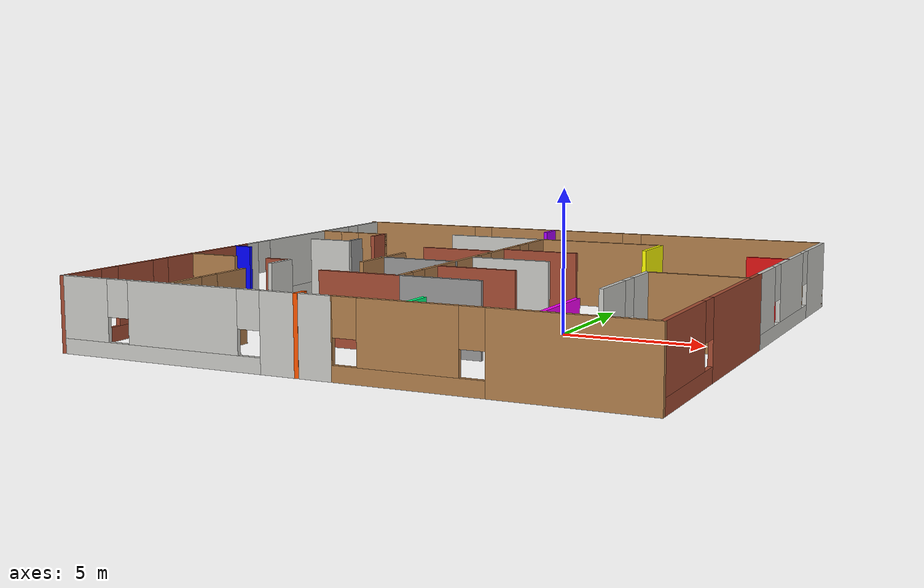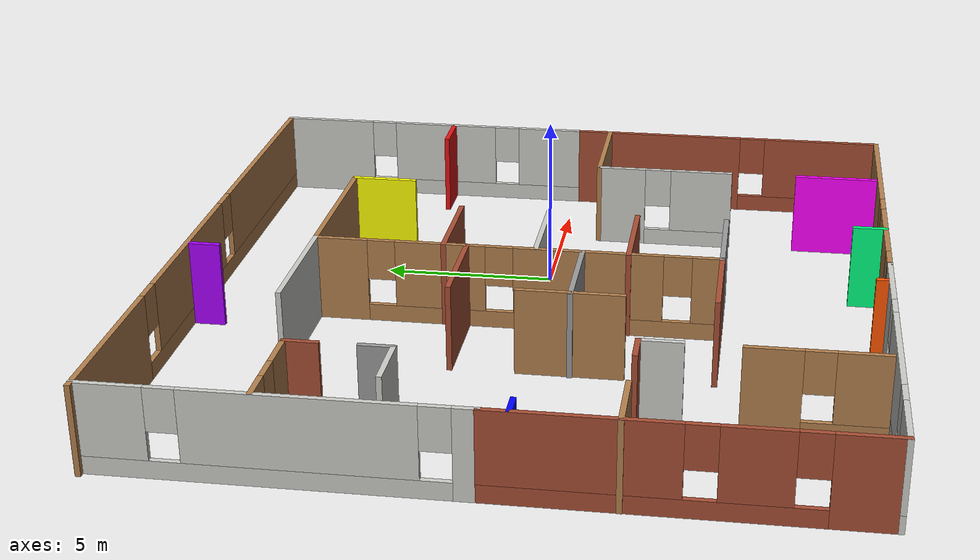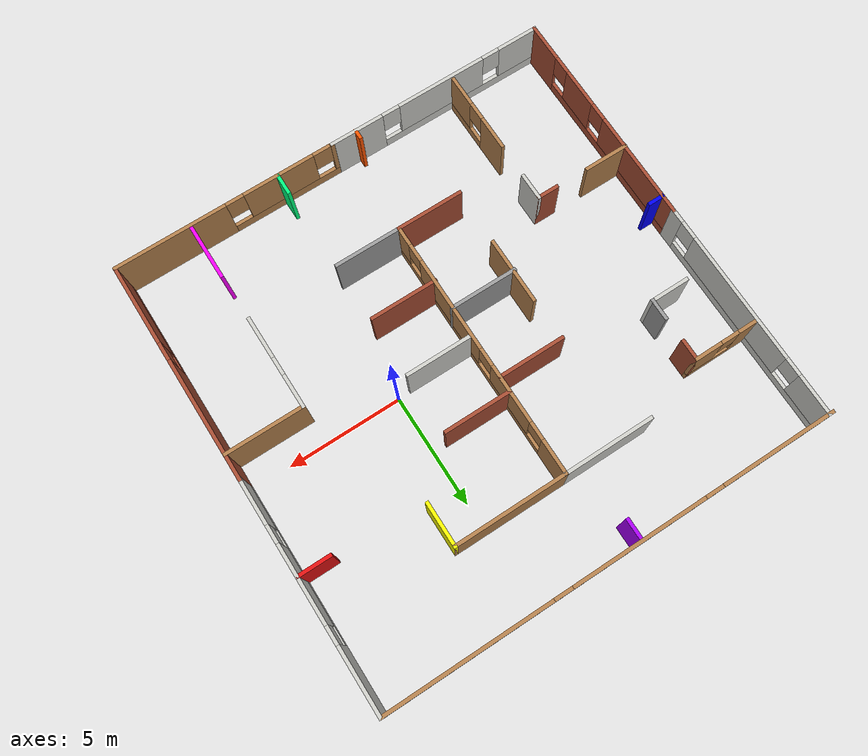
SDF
<?xml version='1.0'?>
<sdf version='1.6'>
  <model name='Mapland'>
    <pose frame=''>-3.22545 -0.022811 0 0 -0 0</pose>
    <link name='Wall_1'>
      <pose frame=''>0 9.85314 0 0 -0 0</pose>
      <visual name='Wall_1_Visual_0'>
        <pose frame=''>-7.42338 0 1.25 0 -0 0</pose>
        <geometry>
          <box>
            <size>5.15324 0.15 2.5</size>
          </box>
        </geometry>
        <material>
          <script>
            <uri>file://media/materials/scripts/gazebo.material</uri>
            <name>Gazebo/Wood</name>
          </script>
          <ambient>1 1 1 1</ambient>
        </material>
        <meta>
          <layer>0</layer>
        </meta>
      </visual>
      <collision name='Wall_1_Collision_0'>
        <geometry>
          <box>
            <size>5.15324 0.15 2.5</size>
          </box>
        </geometry>
        <pose frame=''>-7.42338 0 1.25 0 -0 0</pose>
      </collision>
      <visual name='Wall_1_Visual_1'>
        <pose frame=''>2.57662 0 0.25 0 -0 0</pose>
        <geometry>
          <box>
            <size>14.8468 0.15 0.5</size>
          </box>
        </geometry>
        <material>
          <script>
            <uri>file://media/materials/scripts/gazebo.material</uri>
            <name>Gazebo/Wood</name>
          </script>
          <ambient>1 1 1 1</ambient>
        </material>
        <meta>
          <layer>0</layer>
        </meta>
      </visual>
      <collision name='Wall_1_Collision_1'>
        <geometry>
          <box>
            <size>14.8468 0.15 0.5</size>
          </box>
        </geometry>
        <pose frame=''>2.57662 0 0.25 0 -0 0</pose>
      </collision>
      <visual name='Wall_1_Visual_2'>
        <pose frame=''>-1.08867 0 1.5 0 -0 0</pose>
        <geometry>
          <box>
            <size>5.91618 0.15 2</size>
          </box>
        </geometry>
        <material>
          <script>
            <uri>file://media/materials/scripts/gazebo.material</uri>
            <name>Gazebo/Wood</name>
          </script>
          <ambient>1 1 1 1</ambient>
        </material>
        <meta>
          <layer>0</layer>
        </meta>
      </visual>
      <collision name='Wall_1_Collision_2'>
        <geometry>
          <box>
            <size>5.91618 0.15 2</size>
          </box>
        </geometry>
        <pose frame=''>-1.08867 0 1.5 0 -0 0</pose>
      </collision>
      <visual name='Wall_1_Visual_3'>
        <pose frame=''>6.33471 0 1.5 0 -0 0</pose>
        <geometry>
          <box>
            <size>7.33058 0.15 2</size>
          </box>
        </geometry>
        <material>
          <script>
            <uri>file://media/materials/scripts/gazebo.material</uri>
            <name>Gazebo/Wood</name>
          </script>
          <ambient>1 1 1 1</ambient>
        </material>
        <meta>
          <layer>0</layer>
        </meta>
      </visual>
      <collision name='Wall_1_Collision_3'>
        <geometry>
          <box>
            <size>7.33058 0.15 2</size>
          </box>
        </geometry>
        <pose frame=''>6.33471 0 1.5 0 -0 0</pose>
      </collision>
      <visual name='Wall_1_Visual_4'>
        <pose frame=''>-4.44676 0 1.9 0 -0 0</pose>
        <geometry>
          <box>
            <size>0.8 0.15 1.2</size>
          </box>
        </geometry>
        <material>
          <script>
            <uri>file://media/materials/scripts/gazebo.material</uri>
            <name>Gazebo/Wood</name>
          </script>
          <ambient>1 1 1 1</ambient>
        </material>
        <meta>
          <layer>0</layer>
        </meta>
      </visual>
      <collision name='Wall_1_Collision_4'>
        <geometry>
          <box>
            <size>0.8 0.15 1.2</size>
          </box>
        </geometry>
        <pose frame=''>-4.44676 0 1.9 0 -0 0</pose>
      </collision>
      <visual name='Wall_1_Visual_5'>
        <pose frame=''>2.26942 0 1.9 0 -0 0</pose>
        <geometry>
          <box>
            <size>0.8 0.15 1.2</size>
          </box>
        </geometry>
        <material>
          <script>
            <uri>file://media/materials/scripts/gazebo.material</uri>
            <name>Gazebo/Wood</name>
          </script>
          <ambient>1 1 1 1</ambient>
        </material>
        <meta>
          <layer>0</layer>
        </meta>
      </visual>
      <collision name='Wall_1_Collision_5'>
        <geometry>
          <box>
            <size>0.8 0.15 1.2</size>
          </box>
        </geometry>
        <pose frame=''>2.26942 0 1.9 0 -0 0</pose>
      </collision>
    </link>
    <link name='Wall_10'>
      <collision name='Wall_10_Collision'>
        <geometry>
          <box>
            <size>3 0.15 2.5</size>
          </box>
        </geometry>
        <pose frame=''>0 0 1.25 0 -0 0</pose>
      </collision>
      <visual name='Wall_10_Visual'>
        <pose frame=''>0 0 1.25 0 -0 0</pose>
        <geometry>
          <box>
            <size>3 0.15 2.5</size>
          </box>
        </geometry>
        <material>
          <script>
            <uri>file://media/materials/scripts/gazebo.material</uri>
            <name>Gazebo/Bricks</name>
          </script>
          <ambient>1 1 1 1</ambient>
        </material>
        <meta>
          <layer>0</layer>
        </meta>
      </visual>
      <pose frame=''>-1.66753 -5.25809 0 0 -0 3.14159</pose>
    </link>
    <link name='Wall_12'>
      <collision name='Wall_12_Collision'>
        <geometry>
          <box>
            <size>3 0.15 2.5</size>
          </box>
        </geometry>
        <pose frame=''>0 0 1.25 0 -0 0</pose>
      </collision>
      <visual name='Wall_12_Visual'>
        <pose frame=''>0 0 1.25 0 -0 0</pose>
        <geometry>
          <box>
            <size>3 0.15 2.5</size>
          </box>
        </geometry>
        <material>
          <script>
            <uri>file://media/materials/scripts/gazebo.material</uri>
            <name>Gazebo/Grey</name>
          </script>
          <ambient>0 0 0 1</ambient>
        </material>
        <meta>
          <layer>0</layer>
        </meta>
      </visual>
      <pose frame=''>1.18247 -5.25809 0 0 -0 0</pose>
    </link>
    <link name='Wall_14'>
      <collision name='Wall_14_Collision'>
        <geometry>
          <box>
            <size>4 0.15 2.5</size>
          </box>
        </geometry>
        <pose frame=''>0 0 1.25 0 -0 0</pose>
      </collision>
      <visual name='Wall_14_Visual'>
        <pose frame=''>0 0 1.25 0 -0 0</pose>
        <geometry>
          <box>
            <size>4 0.15 2.5</size>
          </box>
        </geometry>
        <material>
          <script>
            <uri>file://media/materials/scripts/gazebo.material</uri>
            <name>Gazebo/CeilingTiled</name>
          </script>
          <ambient>1 1 1 1</ambient>
        </material>
        <meta>
          <layer>0</layer>
        </meta>
      </visual>
      <pose frame=''>-2.16753 6.34191 0 0 -0 3.14159</pose>
    </link>
    <link name='Wall_16'>
      <collision name='Wall_16_Collision'>
        <geometry>
          <box>
            <size>5 0.15 2.5</size>
          </box>
        </geometry>
        <pose frame=''>0 0 1.25 0 -0 0</pose>
      </collision>
      <visual name='Wall_16_Visual'>
        <pose frame=''>0 0 1.25 0 -0 0</pose>
        <geometry>
          <box>
            <size>5 0.15 2.5</size>
          </box>
        </geometry>
        <material>
          <script>
            <uri>file://media/materials/scripts/gazebo.material</uri>
            <name>Gazebo/Wood</name>
          </script>
          <ambient>1 1 1 1</ambient>
        </material>
        <meta>
          <layer>0</layer>
        </meta>
      </visual>
      <pose frame=''>2.18247 6.34191 0 0 -0 0</pose>
    </link>
    <link name='Wall_17'>
      <collision name='Wall_17_Collision'>
        <geometry>
          <box>
            <size>2 0.15 2.5</size>
          </box>
        </geometry>
        <pose frame=''>0 0 1.25 0 -0 0</pose>
      </collision>
      <visual name='Wall_17_Visual'>
        <pose frame=''>0 0 1.25 0 -0 0</pose>
        <geometry>
          <box>
            <size>2 0.15 2.5</size>
          </box>
        </geometry>
        <material>
          <script>
            <uri>file://media/materials/scripts/gazebo.material</uri>
            <name>Gazebo/Grey</name>
          </script>
          <ambient>1 1 0 1</ambient>
        </material>
        <meta>
          <layer>0</layer>
        </meta>
      </visual>
      <pose frame=''>4.60747 5.41691 0 0 0 -1.5708</pose>
    </link>
    <link name='Wall_19'>
      <collision name='Wall_19_Collision'>
        <geometry>
          <box>
            <size>3 0.15 2.5</size>
          </box>
        </geometry>
        <pose frame=''>0 0 1.25 0 -0 0</pose>
      </collision>
      <visual name='Wall_19_Visual'>
        <pose frame=''>0 0 1.25 0 -0 0</pose>
        <geometry>
          <box>
            <size>3 0.15 2.5</size>
          </box>
        </geometry>
        <material>
          <script>
            <uri>file://media/materials/scripts/gazebo.material</uri>
            <name>Gazebo/Bricks</name>
          </script>
          <ambient>1 1 1 1</ambient>
        </material>
        <meta>
          <layer>0</layer>
        </meta>
      </visual>
      <pose frame=''>1.18247 2.61788 0 0 -0 0</pose>
    </link>
    <link name='Wall_2'>
      <pose frame=''>9.925 4.92814 0 0 0 -1.5708</pose>
      <visual name='Wall_2_Visual_0'>
        <pose frame=''>-3.52969 0 1.25 0 -0 0</pose>
        <geometry>
          <box>
            <size>2.94062 0.15 2.5</size>
          </box>
        </geometry>
        <material>
          <script>
            <uri>file://media/materials/scripts/gazebo.material</uri>
            <name>Gazebo/CeilingTiled</name>
          </script>
          <ambient>1 1 1 1</ambient>
        </material>
        <meta>
          <layer>0</layer>
        </meta>
      </visual>
      <collision name='Wall_2_Collision_0'>
        <geometry>
          <box>
            <size>2.94062 0.15 2.5</size>
          </box>
        </geometry>
        <pose frame=''>-3.52969 0 1.25 0 -0 0</pose>
      </collision>
      <visual name='Wall_2_Visual_1'>
        <pose frame=''>1.47031 0 0.25 0 -0 0</pose>
        <geometry>
          <box>
            <size>7.05938 0.15 0.5</size>
          </box>
        </geometry>
        <material>
          <script>
            <uri>file://media/materials/scripts/gazebo.material</uri>
            <name>Gazebo/CeilingTiled</name>
          </script>
          <ambient>1 1 1 1</ambient>
        </material>
        <meta>
          <layer>0</layer>
        </meta>
      </visual>
      <collision name='Wall_2_Collision_1'>
        <geometry>
          <box>
            <size>7.05938 0.15 0.5</size>
          </box>
        </geometry>
        <pose frame=''>1.47031 0 0.25 0 -0 0</pose>
      </collision>
      <visual name='Wall_2_Visual_2'>
        <pose frame=''>0.448173 0 1.5 0 -0 0</pose>
        <geometry>
          <box>
            <size>3.41511 0.15 2</size>
          </box>
        </geometry>
        <material>
          <script>
            <uri>file://media/materials/scripts/gazebo.material</uri>
            <name>Gazebo/CeilingTiled</name>
          </script>
          <ambient>1 1 1 1</ambient>
        </material>
        <meta>
          <layer>0</layer>
        </meta>
      </visual>
      <collision name='Wall_2_Collision_2'>
        <geometry>
          <box>
            <size>3.41511 0.15 2</size>
          </box>
        </geometry>
        <pose frame=''>0.448173 0 1.5 0 -0 0</pose>
      </collision>
      <visual name='Wall_2_Visual_3'>
        <pose frame=''>3.97786 0 1.5 0 -0 0</pose>
        <geometry>
          <box>
            <size>2.04427 0.15 2</size>
          </box>
        </geometry>
        <material>
          <script>
            <uri>file://media/materials/scripts/gazebo.material</uri>
            <name>Gazebo/CeilingTiled</name>
          </script>
          <ambient>1 1 1 1</ambient>
        </material>
        <meta>
          <layer>0</layer>
        </meta>
      </visual>
      <collision name='Wall_2_Collision_3'>
        <geometry>
          <box>
            <size>2.04427 0.15 2</size>
          </box>
        </geometry>
        <pose frame=''>3.97786 0 1.5 0 -0 0</pose>
      </collision>
      <visual name='Wall_2_Visual_4'>
        <pose frame=''>-1.65938 0 1.9 0 -0 0</pose>
        <geometry>
          <box>
            <size>0.8 0.15 1.2</size>
          </box>
        </geometry>
        <material>
          <script>
            <uri>file://media/materials/scripts/gazebo.material</uri>
            <name>Gazebo/CeilingTiled</name>
          </script>
          <ambient>1 1 1 1</ambient>
        </material>
        <meta>
          <layer>0</layer>
        </meta>
      </visual>
      <collision name='Wall_2_Collision_4'>
        <geometry>
          <box>
            <size>0.8 0.15 1.2</size>
          </box>
        </geometry>
        <pose frame=''>-1.65938 0 1.9 0 -0 0</pose>
      </collision>
      <visual name='Wall_2_Visual_5'>
        <pose frame=''>2.55572 0 1.9 0 -0 0</pose>
        <geometry>
          <box>
            <size>0.8 0.15 1.2</size>
          </box>
        </geometry>
        <material>
          <script>
            <uri>file://media/materials/scripts/gazebo.material</uri>
            <name>Gazebo/CeilingTiled</name>
          </script>
          <ambient>1 1 1 1</ambient>
        </material>
        <meta>
          <layer>0</layer>
        </meta>
      </visual>
      <collision name='Wall_2_Collision_5'>
        <geometry>
          <box>
            <size>0.8 0.15 1.2</size>
          </box>
        </geometry>
        <pose frame=''>2.55572 0 1.9 0 -0 0</pose>
      </collision>
    </link>
    <link name='Wall_21'>
      <collision name='Wall_21_Collision'>
        <geometry>
          <box>
            <size>3 0.15 2.5</size>
          </box>
        </geometry>
        <pose frame=''>0 0 1.25 0 -0 0</pose>
      </collision>
      <visual name='Wall_21_Visual'>
        <pose frame=''>0 0 1.25 0 -0 0</pose>
        <geometry>
          <box>
            <size>3 0.15 2.5</size>
          </box>
        </geometry>
        <material>
          <script>
            <uri>file://media/materials/scripts/gazebo.material</uri>
            <name>Gazebo/CeilingTiled</name>
          </script>
          <ambient>1 1 1 1</ambient>
        </material>
        <meta>
          <layer>0</layer>
        </meta>
      </visual>
      <pose frame=''>1.20907 -0.015535 0 0 -0 0</pose>
    </link>
    <link name='Wall_23'>
      <collision name='Wall_23_Collision'>
        <geometry>
          <box>
            <size>3 0.15 2.5</size>
          </box>
        </geometry>
        <pose frame=''>0 0 1.25 0 -0 0</pose>
      </collision>
      <visual name='Wall_23_Visual'>
        <pose frame=''>0 0 1.25 0 -0 0</pose>
        <geometry>
          <box>
            <size>3 0.15 2.5</size>
          </box>
        </geometry>
        <material>
          <script>
            <uri>file://media/materials/scripts/gazebo.material</uri>
            <name>Gazebo/Bricks</name>
          </script>
          <ambient>1 1 1 1</ambient>
        </material>
        <meta>
          <layer>0</layer>
        </meta>
      </visual>
      <pose frame=''>1.15587 -2.64895 0 0 -0 0</pose>
    </link>
    <link name='Wall_25'>
      <collision name='Wall_25_Collision'>
        <geometry>
          <box>
            <size>3.5 0.15 2.5</size>
          </box>
        </geometry>
        <pose frame=''>0 0 1.25 0 -0 0</pose>
      </collision>
      <visual name='Wall_25_Visual'>
        <pose frame=''>0 0 1.25 0 -0 0</pose>
        <geometry>
          <box>
            <size>3.5 0.15 2.5</size>
          </box>
        </geometry>
        <material>
          <script>
            <uri>file://media/materials/scripts/gazebo.material</uri>
            <name>Gazebo/Wood</name>
          </script>
          <ambient>1 1 1 1</ambient>
        </material>
        <meta>
          <layer>0</layer>
        </meta>
      </visual>
      <pose frame=''>8.24375 -1.10614 0 0 -0 3.14159</pose>
    </link>
    <link name='Wall_26'>
      <pose frame=''>6.56875 -3.15614 0 0 0 -1.5708</pose>
      <visual name='Wall_26_Visual_0'>
        <pose frame=''>-1.35649 0 1.25 0 -0 0</pose>
        <geometry>
          <box>
            <size>1.53701 0.15 2.5</size>
          </box>
        </geometry>
        <material>
          <script>
            <uri>file://media/materials/scripts/gazebo.material</uri>
            <name>Gazebo/CeilingTiled</name>
          </script>
          <ambient>1 1 1 1</ambient>
        </material>
        <meta>
          <layer>0</layer>
        </meta>
      </visual>
      <collision name='Wall_26_Collision_0'>
        <geometry>
          <box>
            <size>1.53701 0.15 2.5</size>
          </box>
        </geometry>
        <pose frame=''>-1.35649 0 1.25 0 -0 0</pose>
      </collision>
      <visual name='Wall_26_Visual_1'>
        <pose frame=''>0.768507 0 0.25 0 -0 0</pose>
        <geometry>
          <box>
            <size>2.71299 0.15 0.5</size>
          </box>
        </geometry>
        <material>
          <script>
            <uri>file://media/materials/scripts/gazebo.material</uri>
            <name>Gazebo/CeilingTiled</name>
          </script>
          <ambient>1 1 1 1</ambient>
        </material>
        <meta>
          <layer>0</layer>
        </meta>
      </visual>
      <collision name='Wall_26_Collision_1'>
        <geometry>
          <box>
            <size>2.71299 0.15 0.5</size>
          </box>
        </geometry>
        <pose frame=''>0.768507 0 0.25 0 -0 0</pose>
      </collision>
      <visual name='Wall_26_Visual_2'>
        <pose frame=''>1.16851 0 1.5 0 -0 0</pose>
        <geometry>
          <box>
            <size>1.91299 0.15 2</size>
          </box>
        </geometry>
        <material>
          <script>
            <uri>file://media/materials/scripts/gazebo.material</uri>
            <name>Gazebo/CeilingTiled</name>
          </script>
          <ambient>1 1 1 1</ambient>
        </material>
        <meta>
          <layer>0</layer>
        </meta>
      </visual>
      <collision name='Wall_26_Collision_2'>
        <geometry>
          <box>
            <size>1.91299 0.15 2</size>
          </box>
        </geometry>
        <pose frame=''>1.16851 0 1.5 0 -0 0</pose>
      </collision>
      <visual name='Wall_26_Visual_3'>
        <pose frame=''>-0.187986 0 1.9 0 -0 0</pose>
        <geometry>
          <box>
            <size>0.8 0.15 1.2</size>
          </box>
        </geometry>
        <material>
          <script>
            <uri>file://media/materials/scripts/gazebo.material</uri>
            <name>Gazebo/CeilingTiled</name>
          </script>
          <ambient>1 1 1 1</ambient>
        </material>
        <meta>
          <layer>0</layer>
        </meta>
      </visual>
      <collision name='Wall_26_Collision_3'>
        <geometry>
          <box>
            <size>0.8 0.15 1.2</size>
          </box>
        </geometry>
        <pose frame=''>-0.187986 0 1.9 0 -0 0</pose>
      </collision>
    </link>
    <link name='Wall_28'>
      <collision name='Wall_28_Collision'>
        <geometry>
          <box>
            <size>2.5 0.15 2.5</size>
          </box>
        </geometry>
        <pose frame=''>0 0 1.25 0 -0 0</pose>
      </collision>
      <visual name='Wall_28_Visual'>
        <pose frame=''>0 0 1.25 0 -0 0</pose>
        <geometry>
          <box>
            <size>2.5 0.15 2.5</size>
          </box>
        </geometry>
        <material>
          <script>
            <uri>file://media/materials/scripts/gazebo.material</uri>
            <name>Gazebo/Grey</name>
          </script>
          <ambient>1 0 1 1</ambient>
        </material>
        <meta>
          <layer>0</layer>
        </meta>
      </visual>
      <pose frame=''>6.59372 -8.50559 0 0 0 -1.5708</pose>
    </link>
    <link name='Wall_3'>
      <pose frame=''>9.925 -4.92186 0 0 0 -1.5708</pose>
      <visual name='Wall_3_Visual_0'>
        <pose frame=''>-2.24572 0 1.25 0 -0 0</pose>
        <geometry>
          <box>
            <size>5.50856 0.15 2.5</size>
          </box>
        </geometry>
        <material>
          <script>
            <uri>file://media/materials/scripts/gazebo.material</uri>
            <name>Gazebo/Bricks</name>
          </script>
          <ambient>1 1 1 1</ambient>
        </material>
        <meta>
          <layer>0</layer>
        </meta>
      </visual>
      <collision name='Wall_3_Collision_0'>
        <geometry>
          <box>
            <size>5.50856 0.15 2.5</size>
          </box>
        </geometry>
        <pose frame=''>-2.24572 0 1.25 0 -0 0</pose>
      </collision>
      <visual name='Wall_3_Visual_1'>
        <pose frame=''>2.75428 0 0.25 0 -0 0</pose>
        <geometry>
          <box>
            <size>4.49144 0.15 0.5</size>
          </box>
        </geometry>
        <material>
          <script>
            <uri>file://media/materials/scripts/gazebo.material</uri>
            <name>Gazebo/Bricks</name>
          </script>
          <ambient>1 1 1 1</ambient>
        </material>
        <meta>
          <layer>0</layer>
        </meta>
      </visual>
      <collision name='Wall_3_Collision_1'>
        <geometry>
          <box>
            <size>4.49144 0.15 0.5</size>
          </box>
        </geometry>
        <pose frame=''>2.75428 0 0.25 0 -0 0</pose>
      </collision>
      <visual name='Wall_3_Visual_2'>
        <pose frame=''>3.15428 0 1.5 0 -0 0</pose>
        <geometry>
          <box>
            <size>3.69143 0.15 2</size>
          </box>
        </geometry>
        <material>
          <script>
            <uri>file://media/materials/scripts/gazebo.material</uri>
            <name>Gazebo/Bricks</name>
          </script>
          <ambient>1 1 1 1</ambient>
        </material>
        <meta>
          <layer>0</layer>
        </meta>
      </visual>
      <collision name='Wall_3_Collision_2'>
        <geometry>
          <box>
            <size>3.69143 0.15 2</size>
          </box>
        </geometry>
        <pose frame=''>3.15428 0 1.5 0 -0 0</pose>
      </collision>
      <visual name='Wall_3_Visual_3'>
        <pose frame=''>0.908565 0 1.9 0 -0 0</pose>
        <geometry>
          <box>
            <size>0.8 0.15 1.2</size>
          </box>
        </geometry>
        <material>
          <script>
            <uri>file://media/materials/scripts/gazebo.material</uri>
            <name>Gazebo/Bricks</name>
          </script>
          <ambient>1 1 1 1</ambient>
        </material>
        <meta>
          <layer>0</layer>
        </meta>
      </visual>
      <collision name='Wall_3_Collision_3'>
        <geometry>
          <box>
            <size>0.8 0.15 1.2</size>
          </box>
        </geometry>
        <pose frame=''>0.908565 0 1.9 0 -0 0</pose>
      </collision>
    </link>
    <link name='Wall_30'>
      <collision name='Wall_30_Collision'>
        <geometry>
          <box>
            <size>3 0.15 2.5</size>
          </box>
        </geometry>
        <pose frame=''>0 0 1.25 0 -0 0</pose>
      </collision>
      <visual name='Wall_30_Visual'>
        <pose frame=''>0 0 1.25 0 -0 0</pose>
        <geometry>
          <box>
            <size>3 0.15 2.5</size>
          </box>
        </geometry>
        <material>
          <script>
            <uri>file://media/materials/scripts/gazebo.material</uri>
            <name>Gazebo/Grey</name>
          </script>
          <ambient>1 1 1 1</ambient>
        </material>
        <meta>
          <layer>0</layer>
        </meta>
      </visual>
      <pose frame=''>-1.66753 -1.34554 0 0 -0 3.14159</pose>
    </link>
    <link name='Wall_32'>
      <collision name='Wall_32_Collision'>
        <geometry>
          <box>
            <size>3 0.15 2.5</size>
          </box>
        </geometry>
        <pose frame=''>0 0 1.25 0 -0 0</pose>
      </collision>
      <visual name='Wall_32_Visual'>
        <pose frame=''>0 0 1.25 0 -0 0</pose>
        <geometry>
          <box>
            <size>3 0.15 2.5</size>
          </box>
        </geometry>
        <material>
          <script>
            <uri>file://media/materials/scripts/gazebo.material</uri>
            <name>Gazebo/Bricks</name>
          </script>
          <ambient>1 1 1 1</ambient>
        </material>
        <meta>
          <layer>0</layer>
        </meta>
      </visual>
      <pose frame=''>-1.66753 1.95288 0 0 -0 3.14159</pose>
    </link>
    <link name='Wall_34'>
      <collision name='Wall_34_Collision'>
        <geometry>
          <box>
            <size>3 0.15 2.5</size>
          </box>
        </geometry>
        <pose frame=''>0 0 1.25 0 -0 0</pose>
      </collision>
      <visual name='Wall_34_Visual'>
        <pose frame=''>0 0 1.25 0 -0 0</pose>
        <geometry>
          <box>
            <size>3 0.15 2.5</size>
          </box>
        </geometry>
        <material>
          <script>
            <uri>file://media/materials/scripts/gazebo.material</uri>
            <name>Gazebo/Wood</name>
          </script>
          <ambient>1 1 1 1</ambient>
        </material>
        <meta>
          <layer>0</layer>
        </meta>
      </visual>
      <pose frame=''>-3.03555 -1.33413 0 0 0 -1.5708</pose>
    </link>
    <link name='Wall_36'>
      <pose frame=''>-8.3138 5.43751 0 0 -0 0</pose>
      <visual name='Wall_36_Visual_0'>
        <pose frame=''>-1.02784 0 1.25 0 -0 0</pose>
        <geometry>
          <box>
            <size>0.944323 0.15 2.5</size>
          </box>
        </geometry>
        <material>
          <script>
            <uri>file://media/materials/scripts/gazebo.material</uri>
            <name>Gazebo/Wood</name>
          </script>
          <ambient>1 1 1 1</ambient>
        </material>
        <meta>
          <layer>0</layer>
        </meta>
      </visual>
      <collision name='Wall_36_Collision_0'>
        <geometry>
          <box>
            <size>0.944323 0.15 2.5</size>
          </box>
        </geometry>
        <pose frame=''>-1.02784 0 1.25 0 -0 0</pose>
      </collision>
      <visual name='Wall_36_Visual_1'>
        <pose frame=''>0.472162 0 0.25 0 -0 0</pose>
        <geometry>
          <box>
            <size>2.05568 0.15 0.5</size>
          </box>
        </geometry>
        <material>
          <script>
            <uri>file://media/materials/scripts/gazebo.material</uri>
            <name>Gazebo/Wood</name>
          </script>
          <ambient>1 1 1 1</ambient>
        </material>
        <meta>
          <layer>0</layer>
        </meta>
      </visual>
      <collision name='Wall_36_Collision_1'>
        <geometry>
          <box>
            <size>2.05568 0.15 0.5</size>
          </box>
        </geometry>
        <pose frame=''>0.472162 0 0.25 0 -0 0</pose>
      </collision>
      <visual name='Wall_36_Visual_2'>
        <pose frame=''>0.872162 0 1.5 0 -0 0</pose>
        <geometry>
          <box>
            <size>1.25568 0.15 2</size>
          </box>
        </geometry>
        <material>
          <script>
            <uri>file://media/materials/scripts/gazebo.material</uri>
            <name>Gazebo/Wood</name>
          </script>
          <ambient>1 1 1 1</ambient>
        </material>
        <meta>
          <layer>0</layer>
        </meta>
      </visual>
      <collision name='Wall_36_Collision_2'>
        <geometry>
          <box>
            <size>1.25568 0.15 2</size>
          </box>
        </geometry>
        <pose frame=''>0.872162 0 1.5 0 -0 0</pose>
      </collision>
      <visual name='Wall_36_Visual_3'>
        <pose frame=''>-0.155677 0 1.9 0 -0 0</pose>
        <geometry>
          <box>
            <size>0.8 0.15 1.2</size>
          </box>
        </geometry>
        <material>
          <script>
            <uri>file://media/materials/scripts/gazebo.material</uri>
            <name>Gazebo/Wood</name>
          </script>
          <ambient>1 1 1 1</ambient>
        </material>
        <meta>
          <layer>0</layer>
        </meta>
      </visual>
      <collision name='Wall_36_Collision_3'>
        <geometry>
          <box>
            <size>0.8 0.15 1.2</size>
          </box>
        </geometry>
        <pose frame=''>-0.155677 0 1.9 0 -0 0</pose>
      </collision>
    </link>
    <link name='Wall_37'>
      <collision name='Wall_37_Collision'>
        <geometry>
          <box>
            <size>1 0.15 2.5</size>
          </box>
        </geometry>
        <pose frame=''>0 0 1.25 0 -0 0</pose>
      </collision>
      <visual name='Wall_37_Visual'>
        <pose frame=''>0 0 1.25 0 -0 0</pose>
        <geometry>
          <box>
            <size>1 0.15 2.5</size>
          </box>
        </geometry>
        <material>
          <script>
            <uri>file://media/materials/scripts/gazebo.material</uri>
            <name>Gazebo/Bricks</name>
          </script>
          <ambient>1 1 1 1</ambient>
        </material>
        <meta>
          <layer>0</layer>
        </meta>
      </visual>
      <pose frame=''>-6.8888 5.01251 0 0 0 -1.5708</pose>
    </link>
    <link name='Wall_39'>
      <collision name='Wall_39_Collision'>
        <geometry>
          <box>
            <size>1 0.15 2.5</size>
          </box>
        </geometry>
        <pose frame=''>0 0 1.25 0 -0 0</pose>
      </collision>
      <visual name='Wall_39_Visual'>
        <pose frame=''>0 0 1.25 0 -0 0</pose>
        <geometry>
          <box>
            <size>1 0.15 2.5</size>
          </box>
        </geometry>
        <material>
          <script>
            <uri>file://media/materials/scripts/gazebo.material</uri>
            <name>Gazebo/Grey</name>
          </script>
          <ambient>1 1 1 1</ambient>
        </material>
        <meta>
          <layer>0</layer>
        </meta>
      </visual>
      <pose frame=''>-6.86598 3.04409 0 0 0 -1.5708</pose>
    </link>
    <link name='Wall_4'>
      <pose frame=''>5 -9.84686 0 0 -0 3.14159</pose>
      <visual name='Wall_4_Visual_0'>
        <pose frame=''>-2.4978 0 1.25 0 -0 0</pose>
        <geometry>
          <box>
            <size>5.0044 0.15 2.5</size>
          </box>
        </geometry>
        <material>
          <script>
            <uri>file://media/materials/scripts/gazebo.material</uri>
            <name>Gazebo/Wood</name>
          </script>
          <ambient>1 1 1 1</ambient>
        </material>
        <meta>
          <layer>0</layer>
        </meta>
      </visual>
      <collision name='Wall_4_Collision_0'>
        <geometry>
          <box>
            <size>5.0044 0.15 2.5</size>
          </box>
        </geometry>
        <pose frame=''>-2.4978 0 1.25 0 -0 0</pose>
      </collision>
      <visual name='Wall_4_Visual_1'>
        <pose frame=''>2.5022 0 0.25 0 -0 0</pose>
        <geometry>
          <box>
            <size>4.9956 0.15 0.5</size>
          </box>
        </geometry>
        <material>
          <script>
            <uri>file://media/materials/scripts/gazebo.material</uri>
            <name>Gazebo/Wood</name>
          </script>
          <ambient>1 1 1 1</ambient>
        </material>
        <meta>
          <layer>0</layer>
        </meta>
      </visual>
      <collision name='Wall_4_Collision_1'>
        <geometry>
          <box>
            <size>4.9956 0.15 0.5</size>
          </box>
        </geometry>
        <pose frame=''>2.5022 0 0.25 0 -0 0</pose>
      </collision>
      <visual name='Wall_4_Visual_2'>
        <pose frame=''>2.41116 0 1.5 0 -0 0</pose>
        <geometry>
          <box>
            <size>3.21352 0.15 2</size>
          </box>
        </geometry>
        <material>
          <script>
            <uri>file://media/materials/scripts/gazebo.material</uri>
            <name>Gazebo/Wood</name>
          </script>
          <ambient>1 1 1 1</ambient>
        </material>
        <meta>
          <layer>0</layer>
        </meta>
      </visual>
      <collision name='Wall_4_Collision_2'>
        <geometry>
          <box>
            <size>3.21352 0.15 2</size>
          </box>
        </geometry>
        <pose frame=''>2.41116 0 1.5 0 -0 0</pose>
      </collision>
      <visual name='Wall_4_Visual_3'>
        <pose frame=''>4.90896 0 1.5 0 -0 0</pose>
        <geometry>
          <box>
            <size>0.182079 0.15 2</size>
          </box>
        </geometry>
        <material>
          <script>
            <uri>file://media/materials/scripts/gazebo.material</uri>
            <name>Gazebo/Wood</name>
          </script>
          <ambient>1 1 1 1</ambient>
        </material>
        <meta>
          <layer>0</layer>
        </meta>
      </visual>
      <collision name='Wall_4_Collision_3'>
        <geometry>
          <box>
            <size>0.182079 0.15 2</size>
          </box>
        </geometry>
        <pose frame=''>4.90896 0 1.5 0 -0 0</pose>
      </collision>
      <visual name='Wall_4_Visual_4'>
        <pose frame=''>0.404399 0 1.9 0 -0 0</pose>
        <geometry>
          <box>
            <size>0.8 0.15 1.2</size>
          </box>
        </geometry>
        <material>
          <script>
            <uri>file://media/materials/scripts/gazebo.material</uri>
            <name>Gazebo/Wood</name>
          </script>
          <ambient>1 1 1 1</ambient>
        </material>
        <meta>
          <layer>0</layer>
        </meta>
      </visual>
      <collision name='Wall_4_Collision_4'>
        <geometry>
          <box>
            <size>0.8 0.15 1.2</size>
          </box>
        </geometry>
        <pose frame=''>0.404399 0 1.9 0 -0 0</pose>
      </collision>
      <visual name='Wall_4_Visual_5'>
        <pose frame=''>4.41792 0 1.9 0 -0 0</pose>
        <geometry>
          <box>
            <size>0.8 0.15 1.2</size>
          </box>
        </geometry>
        <material>
          <script>
            <uri>file://media/materials/scripts/gazebo.material</uri>
            <name>Gazebo/Wood</name>
          </script>
          <ambient>1 1 1 1</ambient>
        </material>
        <meta>
          <layer>0</layer>
        </meta>
      </visual>
      <collision name='Wall_4_Collision_5'>
        <geometry>
          <box>
            <size>0.8 0.15 1.2</size>
          </box>
        </geometry>
        <pose frame=''>4.41792 0 1.9 0 -0 0</pose>
      </collision>
    </link>
    <link name='Wall_40'>
      <collision name='Wall_40_Collision'>
        <geometry>
          <box>
            <size>1.75 0.15 2.5</size>
          </box>
        </geometry>
        <pose frame=''>0 0 1.25 0 -0 0</pose>
      </collision>
      <visual name='Wall_40_Visual'>
        <pose frame=''>0 0 1.25 0 -0 0</pose>
        <geometry>
          <box>
            <size>1.75 0.15 2.5</size>
          </box>
        </geometry>
        <material>
          <script>
            <uri>file://media/materials/scripts/gazebo.material</uri>
            <name>Gazebo/CeilingTiled</name>
          </script>
          <ambient>1 1 1 1</ambient>
        </material>
        <meta>
          <layer>0</layer>
        </meta>
      </visual>
      <pose frame=''>-7.66598 2.61909 0 0 -0 3.14159</pose>
    </link>
    <link name='Wall_42'>
      <collision name='Wall_42_Collision'>
        <geometry>
          <box>
            <size>2 0.15 2.5</size>
          </box>
        </geometry>
        <pose frame=''>0 0 1.25 0 -0 0</pose>
      </collision>
      <visual name='Wall_42_Visual'>
        <pose frame=''>0 0 1.25 0 -0 0</pose>
        <geometry>
          <box>
            <size>2 0.15 2.5</size>
          </box>
        </geometry>
        <material>
          <script>
            <uri>file://media/materials/scripts/gazebo.material</uri>
            <name>Gazebo/Wood</name>
          </script>
          <ambient>1 1 1 1</ambient>
        </material>
        <meta>
          <layer>0</layer>
        </meta>
      </visual>
      <pose frame=''>-8.867 -3.34056 0 0 -0 0</pose>
    </link>
    <link name='Wall_44'>
      <collision name='Wall_44_Collision'>
        <geometry>
          <box>
            <size>1 0.15 2.5</size>
          </box>
        </geometry>
        <pose frame=''>0 0 1.25 0 -0 0</pose>
      </collision>
      <visual name='Wall_44_Visual'>
        <pose frame=''>0 0 1.25 0 -0 0</pose>
        <geometry>
          <box>
            <size>1 0.15 2.5</size>
          </box>
        </geometry>
        <material>
          <script>
            <uri>file://media/materials/scripts/gazebo.material</uri>
            <name>Gazebo/Bricks</name>
          </script>
          <ambient>1 1 1 1</ambient>
        </material>
        <meta>
          <layer>0</layer>
        </meta>
      </visual>
      <pose frame=''>-6.04197 -3.36716 0 0 -0 0</pose>
    </link>
    <link name='Wall_45'>
      <collision name='Wall_45_Collision'>
        <geometry>
          <box>
            <size>1.25 0.15 2.5</size>
          </box>
        </geometry>
        <pose frame=''>0 0 1.25 0 -0 0</pose>
      </collision>
      <visual name='Wall_45_Visual'>
        <pose frame=''>0 0 1.25 0 -0 0</pose>
        <geometry>
          <box>
            <size>1.25 0.15 2.5</size>
          </box>
        </geometry>
        <material>
          <script>
            <uri>file://media/materials/scripts/gazebo.material</uri>
            <name>Gazebo/CeilingTiled</name>
          </script>
          <ambient>1 1 1 1</ambient>
        </material>
        <meta>
          <layer>0</layer>
        </meta>
      </visual>
      <pose frame=''>-5.61697 -3.91716 0 0 0 -1.5708</pose>
    </link>
    <link name='Wall_47'>
      <pose frame=''>-5.64237 -7.85378 0 0 0 -1.5708</pose>
      <visual name='Wall_47_Visual_0'>
        <pose frame=''>-1.10649 0 1.25 0 -0 0</pose>
        <geometry>
          <box>
            <size>1.53701 0.15 2.5</size>
          </box>
        </geometry>
        <material>
          <script>
            <uri>file://media/materials/scripts/gazebo.material</uri>
            <name>Gazebo/Wood</name>
          </script>
          <ambient>1 1 1 1</ambient>
        </material>
        <meta>
          <layer>0</layer>
        </meta>
      </visual>
      <collision name='Wall_47_Collision_0'>
        <geometry>
          <box>
            <size>1.53701 0.15 2.5</size>
          </box>
        </geometry>
        <pose frame=''>-1.10649 0 1.25 0 -0 0</pose>
      </collision>
      <visual name='Wall_47_Visual_1'>
        <pose frame=''>0.768507 0 0.25 0 -0 0</pose>
        <geometry>
          <box>
            <size>2.21299 0.15 0.5</size>
          </box>
        </geometry>
        <material>
          <script>
            <uri>file://media/materials/scripts/gazebo.material</uri>
            <name>Gazebo/Wood</name>
          </script>
          <ambient>1 1 1 1</ambient>
        </material>
        <meta>
          <layer>0</layer>
        </meta>
      </visual>
      <collision name='Wall_47_Collision_1'>
        <geometry>
          <box>
            <size>2.21299 0.15 0.5</size>
          </box>
        </geometry>
        <pose frame=''>0.768507 0 0.25 0 -0 0</pose>
      </collision>
      <visual name='Wall_47_Visual_2'>
        <pose frame=''>1.16851 0 1.5 0 -0 0</pose>
        <geometry>
          <box>
            <size>1.41299 0.15 2</size>
          </box>
        </geometry>
        <material>
          <script>
            <uri>file://media/materials/scripts/gazebo.material</uri>
            <name>Gazebo/Wood</name>
          </script>
          <ambient>1 1 1 1</ambient>
        </material>
        <meta>
          <layer>0</layer>
        </meta>
      </visual>
      <collision name='Wall_47_Collision_2'>
        <geometry>
          <box>
            <size>1.41299 0.15 2</size>
          </box>
        </geometry>
        <pose frame=''>1.16851 0 1.5 0 -0 0</pose>
      </collision>
      <visual name='Wall_47_Visual_3'>
        <pose frame=''>0.062014 0 1.9 0 -0 0</pose>
        <geometry>
          <box>
            <size>0.8 0.15 1.2</size>
          </box>
        </geometry>
        <material>
          <script>
            <uri>file://media/materials/scripts/gazebo.material</uri>
            <name>Gazebo/Wood</name>
          </script>
          <ambient>1 1 1 1</ambient>
        </material>
        <meta>
          <layer>0</layer>
        </meta>
      </visual>
      <collision name='Wall_47_Collision_3'>
        <geometry>
          <box>
            <size>0.8 0.15 1.2</size>
          </box>
        </geometry>
        <pose frame=''>0.062014 0 1.9 0 -0 0</pose>
      </collision>
    </link>
    <link name='Wall_49'>
      <collision name='Wall_49_Collision'>
        <geometry>
          <box>
            <size>0.5 0.15 2.5</size>
          </box>
        </geometry>
        <pose frame=''>0 0 1.25 0 -0 0</pose>
      </collision>
      <visual name='Wall_49_Visual'>
        <pose frame=''>0 0 1.25 0 -0 0</pose>
        <geometry>
          <box>
            <size>0.5 0.15 2.5</size>
          </box>
        </geometry>
        <material>
          <script>
            <uri>file://media/materials/scripts/gazebo.material</uri>
            <name>Gazebo/Grey</name>
          </script>
          <ambient>1 0.333333 0 1</ambient>
        </material>
        <meta>
          <layer>0</layer>
        </meta>
      </visual>
      <pose frame=''>-1.0362 -9.67814 0 0 -0 1.5708</pose>
    </link>
    <link name='Wall_5'>
      <pose frame=''>-4.85 -9.84686 0 0 -0 3.14159</pose>
      <visual name='Wall_5_Visual_0'>
        <pose frame=''>-3.78013 0 1.25 0 -0 0</pose>
        <geometry>
          <box>
            <size>2.43975 0.15 2.5</size>
          </box>
        </geometry>
        <material>
          <script>
            <uri>file://media/materials/scripts/gazebo.material</uri>
            <name>Gazebo/CeilingTiled</name>
          </script>
          <ambient>1 1 1 1</ambient>
        </material>
        <meta>
          <layer>0</layer>
        </meta>
      </visual>
      <collision name='Wall_5_Collision_0'>
        <geometry>
          <box>
            <size>2.43975 0.15 2.5</size>
          </box>
        </geometry>
        <pose frame=''>-3.78013 0 1.25 0 -0 0</pose>
      </collision>
      <visual name='Wall_5_Visual_1'>
        <pose frame=''>1.21987 0 0.25 0 -0 0</pose>
        <geometry>
          <box>
            <size>7.56025 0.15 0.5</size>
          </box>
        </geometry>
        <material>
          <script>
            <uri>file://media/materials/scripts/gazebo.material</uri>
            <name>Gazebo/CeilingTiled</name>
          </script>
          <ambient>1 1 1 1</ambient>
        </material>
        <meta>
          <layer>0</layer>
        </meta>
      </visual>
      <collision name='Wall_5_Collision_1'>
        <geometry>
          <box>
            <size>7.56025 0.15 0.5</size>
          </box>
        </geometry>
        <pose frame=''>1.21987 0 0.25 0 -0 0</pose>
      </collision>
      <visual name='Wall_5_Visual_2'>
        <pose frame=''>0.273664 0 1.5 0 -0 0</pose>
        <geometry>
          <box>
            <size>4.06784 0.15 2</size>
          </box>
        </geometry>
        <material>
          <script>
            <uri>file://media/materials/scripts/gazebo.material</uri>
            <name>Gazebo/CeilingTiled</name>
          </script>
          <ambient>1 1 1 1</ambient>
        </material>
        <meta>
          <layer>0</layer>
        </meta>
      </visual>
      <collision name='Wall_5_Collision_2'>
        <geometry>
          <box>
            <size>4.06784 0.15 2</size>
          </box>
        </geometry>
        <pose frame=''>0.273664 0 1.5 0 -0 0</pose>
      </collision>
      <visual name='Wall_5_Visual_3'>
        <pose frame=''>4.05379 0 1.5 0 -0 0</pose>
        <geometry>
          <box>
            <size>1.89242 0.15 2</size>
          </box>
        </geometry>
        <material>
          <script>
            <uri>file://media/materials/scripts/gazebo.material</uri>
            <name>Gazebo/CeilingTiled</name>
          </script>
          <ambient>1 1 1 1</ambient>
        </material>
        <meta>
          <layer>0</layer>
        </meta>
      </visual>
      <collision name='Wall_5_Collision_3'>
        <geometry>
          <box>
            <size>1.89242 0.15 2</size>
          </box>
        </geometry>
        <pose frame=''>4.05379 0 1.5 0 -0 0</pose>
      </collision>
      <visual name='Wall_5_Visual_4'>
        <pose frame=''>-2.16025 0 1.9 0 -0 0</pose>
        <geometry>
          <box>
            <size>0.8 0.15 1.2</size>
          </box>
        </geometry>
        <material>
          <script>
            <uri>file://media/materials/scripts/gazebo.material</uri>
            <name>Gazebo/CeilingTiled</name>
          </script>
          <ambient>1 1 1 1</ambient>
        </material>
        <meta>
          <layer>0</layer>
        </meta>
      </visual>
      <collision name='Wall_5_Collision_4'>
        <geometry>
          <box>
            <size>0.8 0.15 1.2</size>
          </box>
        </geometry>
        <pose frame=''>-2.16025 0 1.9 0 -0 0</pose>
      </collision>
      <visual name='Wall_5_Visual_5'>
        <pose frame=''>2.70758 0 1.9 0 -0 0</pose>
        <geometry>
          <box>
            <size>0.8 0.15 1.2</size>
          </box>
        </geometry>
        <material>
          <script>
            <uri>file://media/materials/scripts/gazebo.material</uri>
            <name>Gazebo/CeilingTiled</name>
          </script>
          <ambient>1 1 1 1</ambient>
        </material>
        <meta>
          <layer>0</layer>
        </meta>
      </visual>
      <collision name='Wall_5_Collision_5'>
        <geometry>
          <box>
            <size>0.8 0.15 1.2</size>
          </box>
        </geometry>
        <pose frame=''>2.70758 0 1.9 0 -0 0</pose>
      </collision>
    </link>
    <link name='Wall_51'>
      <collision name='Wall_51_Collision'>
        <geometry>
          <box>
            <size>1 0.15 2.5</size>
          </box>
        </geometry>
        <pose frame=''>0 0 1.25 0 -0 0</pose>
      </collision>
      <visual name='Wall_51_Visual'>
        <pose frame=''>0 0 1.25 0 -0 0</pose>
        <geometry>
          <box>
            <size>1 0.15 2.5</size>
          </box>
        </geometry>
        <material>
          <script>
            <uri>file://media/materials/scripts/gazebo.material</uri>
            <name>Gazebo/Grey</name>
          </script>
          <ambient>0 1 0.498039 1</ambient>
        </material>
        <meta>
          <layer>0</layer>
        </meta>
      </visual>
      <pose frame=''>2.61922 -9.41065 0 0 -0 1.5708</pose>
    </link>
    <link name='Wall_53'>
      <collision name='Wall_53_Collision'>
        <geometry>
          <box>
            <size>0.75 0.15 2.5</size>
          </box>
        </geometry>
        <pose frame=''>0 0 1.25 0 -0 0</pose>
      </collision>
      <visual name='Wall_53_Visual'>
        <pose frame=''>0 0 1.25 0 -0 0</pose>
        <geometry>
          <box>
            <size>0.75 0.15 2.5</size>
          </box>
        </geometry>
        <material>
          <script>
            <uri>file://media/materials/scripts/gazebo.material</uri>
            <name>Gazebo/Grey</name>
          </script>
          <ambient>0 0 1 1</ambient>
        </material>
        <meta>
          <layer>0</layer>
        </meta>
      </visual>
      <pose frame=''>-9.46374 -0.740817 0 0 -0 0</pose>
    </link>
    <link name='Wall_55'>
      <collision name='Wall_55_Collision'>
        <geometry>
          <box>
            <size>1 0.15 2.5</size>
          </box>
        </geometry>
        <pose frame=''>0 0 1.25 0 -0 0</pose>
      </collision>
      <visual name='Wall_55_Visual'>
        <pose frame=''>0 0 1.25 0 -0 0</pose>
        <geometry>
          <box>
            <size>1 0.15 2.5</size>
          </box>
        </geometry>
        <material>
          <script>
            <uri>file://media/materials/scripts/gazebo.material</uri>
            <name>Gazebo/Grey</name>
          </script>
          <ambient>0.666667 0 1 1</ambient>
        </material>
        <meta>
          <layer>0</layer>
        </meta>
      </visual>
      <pose frame=''>-1.17612 9.38069 0 0 0 -1.5708</pose>
    </link>
    <link name='Wall_57'>
      <collision name='Wall_57_Collision'>
        <geometry>
          <box>
            <size>1.5 0.15 2.5</size>
          </box>
        </geometry>
        <pose frame=''>0 0 1.25 0 -0 0</pose>
      </collision>
      <visual name='Wall_57_Visual'>
        <pose frame=''>0 0 1.25 0 -0 0</pose>
        <geometry>
          <box>
            <size>1.5 0.15 2.5</size>
          </box>
        </geometry>
        <material>
          <script>
            <uri>file://media/materials/scripts/gazebo.material</uri>
            <name>Gazebo/Grey</name>
          </script>
          <ambient>0.882353 0.0705882 0.0705882 1</ambient>
        </material>
        <meta>
          <layer>0</layer>
        </meta>
      </visual>
      <pose frame=''>9.22009 4.17389 0 0 -0 3.14159</pose>
    </link>
    <link name='Wall_6'>
      <pose frame=''>-9.775 -4.92186 0 0 -0 1.5708</pose>
      <visual name='Wall_6_Visual_0'>
        <pose frame=''>-4.13047 0 1.25 0 -0 0</pose>
        <geometry>
          <box>
            <size>1.73907 0.15 2.5</size>
          </box>
        </geometry>
        <material>
          <script>
            <uri>file://media/materials/scripts/gazebo.material</uri>
            <name>Gazebo/Bricks</name>
          </script>
          <ambient>1 1 1 1</ambient>
        </material>
        <meta>
          <layer>0</layer>
        </meta>
      </visual>
      <collision name='Wall_6_Collision_0'>
        <geometry>
          <box>
            <size>1.73907 0.15 2.5</size>
          </box>
        </geometry>
        <pose frame=''>-4.13047 0 1.25 0 -0 0</pose>
      </collision>
      <visual name='Wall_6_Visual_1'>
        <pose frame=''>0.869534 0 0.25 0 -0 0</pose>
        <geometry>
          <box>
            <size>8.26093 0.15 0.5</size>
          </box>
        </geometry>
        <material>
          <script>
            <uri>file://media/materials/scripts/gazebo.material</uri>
            <name>Gazebo/Bricks</name>
          </script>
          <ambient>1 1 1 1</ambient>
        </material>
        <meta>
          <layer>0</layer>
        </meta>
      </visual>
      <collision name='Wall_6_Collision_1'>
        <geometry>
          <box>
            <size>8.26093 0.15 0.5</size>
          </box>
        </geometry>
        <pose frame=''>0.869534 0 0.25 0 -0 0</pose>
      </collision>
      <visual name='Wall_6_Visual_2'>
        <pose frame=''>-1.57082 0 1.5 0 -0 0</pose>
        <geometry>
          <box>
            <size>1.78022 0.15 2</size>
          </box>
        </geometry>
        <material>
          <script>
            <uri>file://media/materials/scripts/gazebo.material</uri>
            <name>Gazebo/Bricks</name>
          </script>
          <ambient>1 1 1 1</ambient>
        </material>
        <meta>
          <layer>0</layer>
        </meta>
      </visual>
      <collision name='Wall_6_Collision_2'>
        <geometry>
          <box>
            <size>1.78022 0.15 2</size>
          </box>
        </geometry>
        <pose frame=''>-1.57082 0 1.5 0 -0 0</pose>
      </collision>
      <visual name='Wall_6_Visual_3'>
        <pose frame=''>2.55964 0 1.5 0 -0 0</pose>
        <geometry>
          <box>
            <size>4.88071 0.15 2</size>
          </box>
        </geometry>
        <material>
          <script>
            <uri>file://media/materials/scripts/gazebo.material</uri>
            <name>Gazebo/Bricks</name>
          </script>
          <ambient>1 1 1 1</ambient>
        </material>
        <meta>
          <layer>0</layer>
        </meta>
      </visual>
      <collision name='Wall_6_Collision_3'>
        <geometry>
          <box>
            <size>4.88071 0.15 2</size>
          </box>
        </geometry>
        <pose frame=''>2.55964 0 1.5 0 -0 0</pose>
      </collision>
      <visual name='Wall_6_Visual_4'>
        <pose frame=''>-2.86093 0 1.9 0 -0 0</pose>
        <geometry>
          <box>
            <size>0.8 0.15 1.2</size>
          </box>
        </geometry>
        <material>
          <script>
            <uri>file://media/materials/scripts/gazebo.material</uri>
            <name>Gazebo/Bricks</name>
          </script>
          <ambient>1 1 1 1</ambient>
        </material>
        <meta>
          <layer>0</layer>
        </meta>
      </visual>
      <collision name='Wall_6_Collision_4'>
        <geometry>
          <box>
            <size>0.8 0.15 1.2</size>
          </box>
        </geometry>
        <pose frame=''>-2.86093 0 1.9 0 -0 0</pose>
      </collision>
      <visual name='Wall_6_Visual_5'>
        <pose frame=''>-0.280713 0 1.9 0 -0 0</pose>
        <geometry>
          <box>
            <size>0.8 0.15 1.2</size>
          </box>
        </geometry>
        <material>
          <script>
            <uri>file://media/materials/scripts/gazebo.material</uri>
            <name>Gazebo/Bricks</name>
          </script>
          <ambient>1 1 1 1</ambient>
        </material>
        <meta>
          <layer>0</layer>
        </meta>
      </visual>
      <collision name='Wall_6_Collision_5'>
        <geometry>
          <box>
            <size>0.8 0.15 1.2</size>
          </box>
        </geometry>
        <pose frame=''>-0.280713 0 1.9 0 -0 0</pose>
      </collision>
    </link>
    <link name='Wall_7'>
      <pose frame=''>-9.775 4.92814 0 0 -0 1.5708</pose>
      <visual name='Wall_7_Visual_0'>
        <pose frame=''>-4.65998 0 1.25 0 -0 0</pose>
        <geometry>
          <box>
            <size>0.68005 0.15 2.5</size>
          </box>
        </geometry>
        <material>
          <script>
            <uri>file://media/materials/scripts/gazebo.material</uri>
            <name>Gazebo/CeilingTiled</name>
          </script>
          <ambient>1 1 1 1</ambient>
        </material>
        <meta>
          <layer>0</layer>
        </meta>
      </visual>
      <collision name='Wall_7_Collision_0'>
        <geometry>
          <box>
            <size>0.68005 0.15 2.5</size>
          </box>
        </geometry>
        <pose frame=''>-4.65998 0 1.25 0 -0 0</pose>
      </collision>
      <visual name='Wall_7_Visual_1'>
        <pose frame=''>0.340025 0 0.25 0 -0 0</pose>
        <geometry>
          <box>
            <size>9.31995 0.15 0.5</size>
          </box>
        </geometry>
        <material>
          <script>
            <uri>file://media/materials/scripts/gazebo.material</uri>
            <name>Gazebo/CeilingTiled</name>
          </script>
          <ambient>1 1 1 1</ambient>
        </material>
        <meta>
          <layer>0</layer>
        </meta>
      </visual>
      <collision name='Wall_7_Collision_1'>
        <geometry>
          <box>
            <size>9.31995 0.15 0.5</size>
          </box>
        </geometry>
        <pose frame=''>0.340025 0 0.25 0 -0 0</pose>
      </collision>
      <visual name='Wall_7_Visual_2'>
        <pose frame=''>-0.588093 0 1.5 0 -0 0</pose>
        <geometry>
          <box>
            <size>5.86371 0.15 2</size>
          </box>
        </geometry>
        <material>
          <script>
            <uri>file://media/materials/scripts/gazebo.material</uri>
            <name>Gazebo/CeilingTiled</name>
          </script>
          <ambient>1 1 1 1</ambient>
        </material>
        <meta>
          <layer>0</layer>
        </meta>
      </visual>
      <collision name='Wall_7_Collision_2'>
        <geometry>
          <box>
            <size>5.86371 0.15 2</size>
          </box>
        </geometry>
        <pose frame=''>-0.588093 0 1.5 0 -0 0</pose>
      </collision>
      <visual name='Wall_7_Visual_3'>
        <pose frame=''>4.07188 0 1.5 0 -0 0</pose>
        <geometry>
          <box>
            <size>1.85624 0.15 2</size>
          </box>
        </geometry>
        <material>
          <script>
            <uri>file://media/materials/scripts/gazebo.material</uri>
            <name>Gazebo/CeilingTiled</name>
          </script>
          <ambient>1 1 1 1</ambient>
        </material>
        <meta>
          <layer>0</layer>
        </meta>
      </visual>
      <collision name='Wall_7_Collision_3'>
        <geometry>
          <box>
            <size>1.85624 0.15 2</size>
          </box>
        </geometry>
        <pose frame=''>4.07188 0 1.5 0 -0 0</pose>
      </collision>
      <visual name='Wall_7_Visual_4'>
        <pose frame=''>-3.91995 0 1.9 0 -0 0</pose>
        <geometry>
          <box>
            <size>0.8 0.15 1.2</size>
          </box>
        </geometry>
        <material>
          <script>
            <uri>file://media/materials/scripts/gazebo.material</uri>
            <name>Gazebo/CeilingTiled</name>
          </script>
          <ambient>1 1 1 1</ambient>
        </material>
        <meta>
          <layer>0</layer>
        </meta>
      </visual>
      <collision name='Wall_7_Collision_4'>
        <geometry>
          <box>
            <size>0.8 0.15 1.2</size>
          </box>
        </geometry>
        <pose frame=''>-3.91995 0 1.9 0 -0 0</pose>
      </collision>
      <visual name='Wall_7_Visual_5'>
        <pose frame=''>2.74376 0 1.9 0 -0 0</pose>
        <geometry>
          <box>
            <size>0.8 0.15 1.2</size>
          </box>
        </geometry>
        <material>
          <script>
            <uri>file://media/materials/scripts/gazebo.material</uri>
            <name>Gazebo/CeilingTiled</name>
          </script>
          <ambient>1 1 1 1</ambient>
        </material>
        <meta>
          <layer>0</layer>
        </meta>
      </visual>
      <collision name='Wall_7_Collision_5'>
        <geometry>
          <box>
            <size>0.8 0.15 1.2</size>
          </box>
        </geometry>
        <pose frame=''>2.74376 0 1.9 0 -0 0</pose>
      </collision>
    </link>
    <link name='Wall_9'>
      <pose frame=''>-0.242528 0.541913 0 0 0 -1.5708</pose>
      <visual name='Wall_9_Visual_0'>
        <pose frame=''>-5.07989 0 1.25 0 -0 0</pose>
        <geometry>
          <box>
            <size>1.59021 0.15 2.5</size>
          </box>
        </geometry>
        <material>
          <script>
            <uri>file://media/materials/scripts/gazebo.material</uri>
            <name>Gazebo/Wood</name>
          </script>
          <ambient>1 1 1 1</ambient>
        </material>
        <meta>
          <layer>0</layer>
        </meta>
      </visual>
      <collision name='Wall_9_Collision_0'>
        <geometry>
          <box>
            <size>1.59021 0.15 2.5</size>
          </box>
        </geometry>
        <pose frame=''>-5.07989 0 1.25 0 -0 0</pose>
      </collision>
      <visual name='Wall_9_Visual_1'>
        <pose frame=''>0.795107 0 0.25 0 -0 0</pose>
        <geometry>
          <box>
            <size>10.1598 0.15 0.5</size>
          </box>
        </geometry>
        <material>
          <script>
            <uri>file://media/materials/scripts/gazebo.material</uri>
            <name>Gazebo/Wood</name>
          </script>
          <ambient>1 1 1 1</ambient>
        </material>
        <meta>
          <layer>0</layer>
        </meta>
      </visual>
      <collision name='Wall_9_Collision_1'>
        <geometry>
          <box>
            <size>10.1598 0.15 0.5</size>
          </box>
        </geometry>
        <pose frame=''>0.795107 0 0.25 0 -0 0</pose>
      </collision>
      <visual name='Wall_9_Visual_2'>
        <pose frame=''>-2.18237 0 1.5 0 -0 0</pose>
        <geometry>
          <box>
            <size>2.60482 0.15 2</size>
          </box>
        </geometry>
        <material>
          <script>
            <uri>file://media/materials/scripts/gazebo.material</uri>
            <name>Gazebo/Wood</name>
          </script>
          <ambient>1 1 1 1</ambient>
        </material>
        <meta>
          <layer>0</layer>
        </meta>
      </visual>
      <collision name='Wall_9_Collision_2'>
        <geometry>
          <box>
            <size>2.60482 0.15 2</size>
          </box>
        </geometry>
        <pose frame=''>-2.18237 0 1.5 0 -0 0</pose>
      </collision>
      <visual name='Wall_9_Visual_3'>
        <pose frame=''>2.04706 0 1.5 0 -0 0</pose>
        <geometry>
          <box>
            <size>4.25404 0.15 2</size>
          </box>
        </geometry>
        <material>
          <script>
            <uri>file://media/materials/scripts/gazebo.material</uri>
            <name>Gazebo/Wood</name>
          </script>
          <ambient>1 1 1 1</ambient>
        </material>
        <meta>
          <layer>0</layer>
        </meta>
      </visual>
      <collision name='Wall_9_Collision_3'>
        <geometry>
          <box>
            <size>4.25404 0.15 2</size>
          </box>
        </geometry>
        <pose frame=''>2.04706 0 1.5 0 -0 0</pose>
      </collision>
      <visual name='Wall_9_Visual_4'>
        <pose frame=''>5.42454 0 1.5 0 -0 0</pose>
        <geometry>
          <box>
            <size>0.900922 0.15 2</size>
          </box>
        </geometry>
        <material>
          <script>
            <uri>file://media/materials/scripts/gazebo.material</uri>
            <name>Gazebo/Wood</name>
          </script>
          <ambient>1 1 1 1</ambient>
        </material>
        <meta>
          <layer>0</layer>
        </meta>
      </visual>
      <collision name='Wall_9_Collision_4'>
        <geometry>
          <box>
            <size>0.900922 0.15 2</size>
          </box>
        </geometry>
        <pose frame=''>5.42454 0 1.5 0 -0 0</pose>
      </collision>
      <visual name='Wall_9_Visual_5'>
        <pose frame=''>-3.88479 0 1.9 0 -0 0</pose>
        <geometry>
          <box>
            <size>0.8 0.15 1.2</size>
          </box>
        </geometry>
        <material>
          <script>
            <uri>file://media/materials/scripts/gazebo.material</uri>
            <name>Gazebo/Wood</name>
          </script>
          <ambient>1 1 1 1</ambient>
        </material>
        <meta>
          <layer>0</layer>
        </meta>
      </visual>
      <collision name='Wall_9_Collision_5'>
        <geometry>
          <box>
            <size>0.8 0.15 1.2</size>
          </box>
        </geometry>
        <pose frame=''>-3.88479 0 1.9 0 -0 0</pose>
      </collision>
      <visual name='Wall_9_Visual_6'>
        <pose frame=''>-0.47996 0 1.9 0 -0 0</pose>
        <geometry>
          <box>
            <size>0.8 0.15 1.2</size>
          </box>
        </geometry>
        <material>
          <script>
            <uri>file://media/materials/scripts/gazebo.material</uri>
            <name>Gazebo/Wood</name>
          </script>
          <ambient>1 1 1 1</ambient>
        </material>
        <meta>
          <layer>0</layer>
        </meta>
      </visual>
      <collision name='Wall_9_Collision_6'>
        <geometry>
          <box>
            <size>0.8 0.15 1.2</size>
          </box>
        </geometry>
        <pose frame=''>-0.47996 0 1.9 0 -0 0</pose>
      </collision>
      <visual name='Wall_9_Visual_7'>
        <pose frame=''>4.57408 0 1.9 0 -0 0</pose>
        <geometry>
          <box>
            <size>0.8 0.15 1.2</size>
          </box>
        </geometry>
        <material>
          <script>
            <uri>file://media/materials/scripts/gazebo.material</uri>
            <name>Gazebo/Wood</name>
          </script>
          <ambient>1 1 1 1</ambient>
        </material>
        <meta>
          <layer>0</layer>
        </meta>
      </visual>
      <collision name='Wall_9_Collision_7'>
        <geometry>
          <box>
            <size>0.8 0.15 1.2</size>
          </box>
        </geometry>
        <pose frame=''>4.57408 0 1.9 0 -0 0</pose>
      </collision>
    </link>
    <static>1</static>
  </model>
</sdf>
